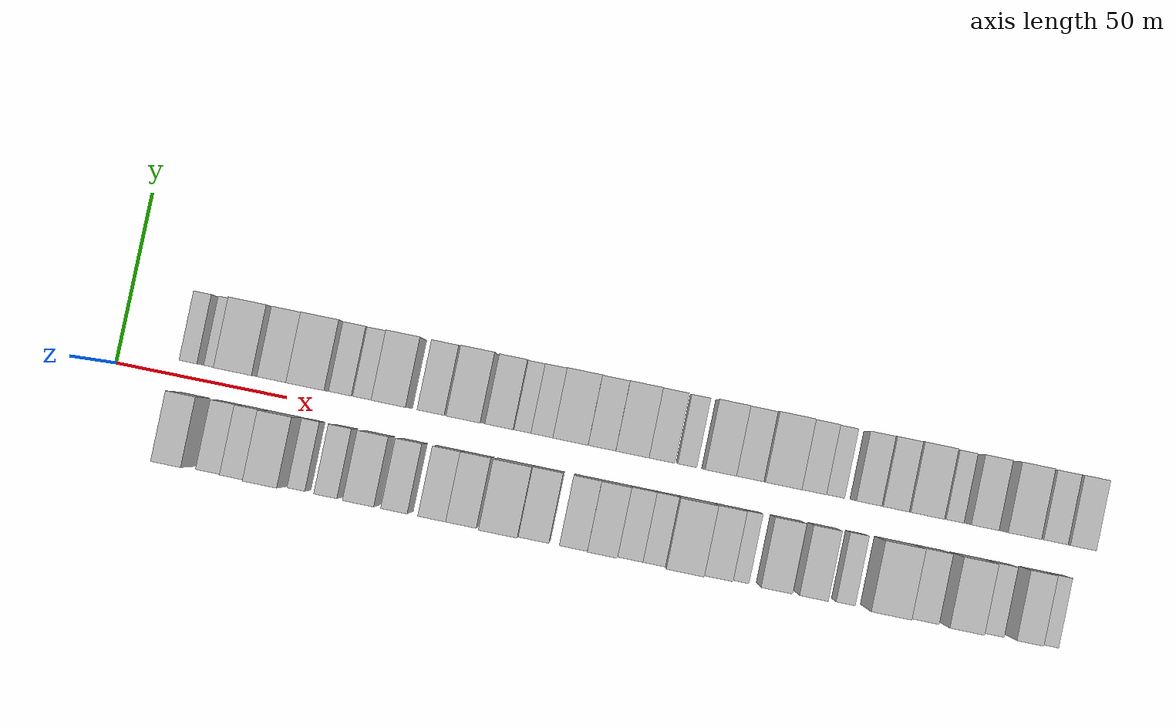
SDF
<sdf version="1.6">
 <world name="default">
  <scene>
   <sky><clouds><speed>12</speed></clouds></sky>
   <ambient>0.4 0.4 0.4 1</ambient>
   <background>0.7 0.7 0.7 1</background>
   <shadows>1</shadows>
  </scene>
  <gravity>0 0 -9.8066</gravity>
  <magnetic_field>6e-06 2.3e-05 -4.2e-05</magnetic_field>
  <physics default="0" name="default_physics" type="ode">
   <ode>
    <solver>
     <type>quick</type>
     <iters>10</iters>
     <sor>1.0</sor>
     <use_dynamic_moi_rescaling>0</use_dynamic_moi_rescaling>
    </solver>
    <constraints>
     <cfm>0</cfm>
     <erp>0.2</erp>
     <contact_max_correcting_vel>100</contact_max_correcting_vel>
     <contact_surface_layer>0.001</contact_surface_layer>
    </constraints>
   </ode>
   <max_step_size>0.004</max_step_size>
   <real_time_factor>1</real_time_factor>
   <real_time_update_rate>250</real_time_update_rate>
  </physics>
  <light name="sun" type="directional">
   <pose>0 0 10 0 0 0</pose>
   <diffuse>0.8 0.8 0.8 1</diffuse>
   <specular>0.2 0.2 0.2 1</specular>
   <attenuation>
    <range>1000</range>
    <constant>0.9</constant>
    <linear>0.01</linear>
    <quadratic>0.001</quadratic>
   </attenuation>
   <direction>-0.5 0.1 -0.9</direction>
  </light>
  <model name="building_1">
   <static>1</static>
   <pose>22.5640 14.5000 0 0.000000 0.000000 1.570796</pose>
   <link name="link">
    <pose>0 0 6.00 0 0 0</pose>
    <collision name="collision"><geometry><box><size>20.0000 5.1280 12.0000</size></box></geometry></collision>
    <visual name="visual">
     <cast_shadows>0</cast_shadows>
     <geometry><box><size>20.0000 5.1280 12.0000</size></box></geometry>
     <material>
      <script>
       <uri>model://HANNAS_wall/materials/scripts</uri>
       <uri>model://HANNAS_wall/materials/textures</uri>
       <name>vrc/HANNAS_wall</name>
      </script>
     </material>
    </visual>
   </link>
  </model>
  <model name="building_2">
   <static>1</static>
   <pose>29.7040 14.5000 0 0.000000 0.000000 1.570796</pose>
   <link name="link">
    <pose>0 0 6.00 0 0 0</pose>
    <collision name="collision"><geometry><box><size>20.0000 5.1521 12.0000</size></box></geometry></collision>
    <visual name="visual">
     <cast_shadows>0</cast_shadows>
     <geometry><box><size>20.0000 5.1521 12.0000</size></box></geometry>
     <material>
      <script>
       <uri>model://HANNAS_wall/materials/scripts</uri>
       <uri>model://HANNAS_wall/materials/textures</uri>
       <name>vrc/HANNAS_wall</name>
      </script>
     </material>
    </visual>
   </link>
  </model>
  <model name="building_3">
   <static>1</static>
   <pose>37.6547 14.5000 0 0.000000 0.000000 1.570796</pose>
   <link name="link">
    <pose>0 0 12.00 0 0 0</pose>
    <collision name="collision"><geometry><box><size>20.0000 10.7491 24.0000</size></box></geometry></collision>
    <visual name="visual">
     <cast_shadows>0</cast_shadows>
     <geometry><box><size>20.0000 10.7491 24.0000</size></box></geometry>
     <material>
      <script>
       <uri>model://HANNAS_wall/materials/scripts</uri>
       <uri>model://HANNAS_wall/materials/textures</uri>
       <name>vrc/HANNAS_wall</name>
      </script>
     </material>
    </visual>
   </link>
  </model>
  <model name="building_4">
   <static>1</static>
   <pose>48.3794 14.5000 0 0.000000 0.000000 1.570796</pose>
   <link name="link">
    <pose>0 0 10.50 0 0 0</pose>
    <collision name="collision"><geometry><box><size>20.0000 8.7003 21.0000</size></box></geometry></collision>
    <visual name="visual">
     <cast_shadows>0</cast_shadows>
     <geometry><box><size>20.0000 8.7003 21.0000</size></box></geometry>
     <material>
      <script>
       <uri>model://HANNAS_wall/materials/scripts</uri>
       <uri>model://HANNAS_wall/materials/textures</uri>
       <name>vrc/HANNAS_wall</name>
      </script>
     </material>
    </visual>
   </link>
  </model>
  <model name="building_5">
   <static>1</static>
   <pose>58.1154 14.5000 0 0.000000 0.000000 1.570796</pose>
   <link name="link">
    <pose>0 0 12.00 0 0 0</pose>
    <collision name="collision"><geometry><box><size>20.0000 10.7716 24.0000</size></box></geometry></collision>
    <visual name="visual">
     <cast_shadows>0</cast_shadows>
     <geometry><box><size>20.0000 10.7716 24.0000</size></box></geometry>
     <material>
      <script>
       <uri>model://HANNAS_wall/materials/scripts</uri>
       <uri>model://HANNAS_wall/materials/textures</uri>
       <name>vrc/HANNAS_wall</name>
      </script>
     </material>
    </visual>
   </link>
  </model>
  <model name="building_6">
   <static>1</static>
   <pose>66.7670 14.5000 0 0.000000 0.000000 1.570796</pose>
   <link name="link">
    <pose>0 0 7.50 0 0 0</pose>
    <collision name="collision"><geometry><box><size>20.0000 6.5317 15.0000</size></box></geometry></collision>
    <visual name="visual">
     <cast_shadows>0</cast_shadows>
     <geometry><box><size>20.0000 6.5317 15.0000</size></box></geometry>
     <material>
      <script>
       <uri>model://HANNAS_wall/materials/scripts</uri>
       <uri>model://HANNAS_wall/materials/textures</uri>
       <name>vrc/HANNAS_wall</name>
      </script>
     </material>
    </visual>
   </link>
  </model>
  <model name="building_7">
   <static>1</static>
   <pose>72.7308 14.5000 0 0.000000 0.000000 1.570796</pose>
   <link name="link">
    <pose>0 0 6.00 0 0 0</pose>
    <collision name="collision"><geometry><box><size>20.0000 5.3961 12.0000</size></box></geometry></collision>
    <visual name="visual">
     <cast_shadows>0</cast_shadows>
     <geometry><box><size>20.0000 5.3961 12.0000</size></box></geometry>
     <material>
      <script>
       <uri>model://HANNAS_wall/materials/scripts</uri>
       <uri>model://HANNAS_wall/materials/textures</uri>
       <name>vrc/HANNAS_wall</name>
      </script>
     </material>
    </visual>
   </link>
  </model>
  <model name="building_8">
   <static>1</static>
   <pose>81.2956 14.5000 0 0.000000 0.000000 1.570796</pose>
   <link name="link">
    <pose>0 0 10.50 0 0 0</pose>
    <collision name="collision"><geometry><box><size>20.0000 9.7335 21.0000</size></box></geometry></collision>
    <visual name="visual">
     <cast_shadows>0</cast_shadows>
     <geometry><box><size>20.0000 9.7335 21.0000</size></box></geometry>
     <material>
      <script>
       <uri>model://HANNAS_wall/materials/scripts</uri>
       <uri>model://HANNAS_wall/materials/textures</uri>
       <name>vrc/HANNAS_wall</name>
      </script>
     </material>
    </visual>
   </link>
  </model>
  <model name="building_9">
   <static>1</static>
   <pose>93.0388 14.5000 0 0.000000 0.000000 1.570796</pose>
   <link name="link">
    <pose>0 0 9.00 0 0 0</pose>
    <collision name="collision"><geometry><box><size>20.0000 7.7528 18.0000</size></box></geometry></collision>
    <visual name="visual">
     <cast_shadows>0</cast_shadows>
     <geometry><box><size>20.0000 7.7528 18.0000</size></box></geometry>
     <material>
      <script>
       <uri>model://HANNAS_wall/materials/scripts</uri>
       <uri>model://HANNAS_wall/materials/textures</uri>
       <name>vrc/HANNAS_wall</name>
      </script>
     </material>
    </visual>
   </link>
  </model>
  <model name="building_10">
   <static>1</static>
   <pose>102.7166 14.5000 0 0.000000 0.000000 1.570796</pose>
   <link name="link">
    <pose>0 0 12.00 0 0 0</pose>
    <collision name="collision"><geometry><box><size>20.0000 9.6029 24.0000</size></box></geometry></collision>
    <visual name="visual">
     <cast_shadows>0</cast_shadows>
     <geometry><box><size>20.0000 9.6029 24.0000</size></box></geometry>
     <material>
      <script>
       <uri>model://HANNAS_wall/materials/scripts</uri>
       <uri>model://HANNAS_wall/materials/textures</uri>
       <name>vrc/HANNAS_wall</name>
      </script>
     </material>
    </visual>
   </link>
  </model>
  <model name="building_11">
   <static>1</static>
   <pose>112.5334 14.5000 0 0.000000 0.000000 1.570796</pose>
   <link name="link">
    <pose>0 0 9.00 0 0 0</pose>
    <collision name="collision"><geometry><box><size>20.0000 8.0306 18.0000</size></box></geometry></collision>
    <visual name="visual">
     <cast_shadows>0</cast_shadows>
     <geometry><box><size>20.0000 8.0306 18.0000</size></box></geometry>
     <material>
      <script>
       <uri>model://HANNAS_wall/materials/scripts</uri>
       <uri>model://HANNAS_wall/materials/textures</uri>
       <name>vrc/HANNAS_wall</name>
      </script>
     </material>
    </visual>
   </link>
  </model>
  <model name="building_12">
   <static>1</static>
   <pose>119.0346 14.5000 0 0.000000 0.000000 1.570796</pose>
   <link name="link">
    <pose>0 0 6.00 0 0 0</pose>
    <collision name="collision"><geometry><box><size>20.0000 4.9718 12.0000</size></box></geometry></collision>
    <visual name="visual">
     <cast_shadows>0</cast_shadows>
     <geometry><box><size>20.0000 4.9718 12.0000</size></box></geometry>
     <material>
      <script>
       <uri>model://HANNAS_wall/materials/scripts</uri>
       <uri>model://HANNAS_wall/materials/textures</uri>
       <name>vrc/HANNAS_wall</name>
      </script>
     </material>
    </visual>
   </link>
  </model>
  <model name="building_13">
   <static>1</static>
   <pose>124.7377 14.5000 0 0.000000 0.000000 1.570796</pose>
   <link name="link">
    <pose>0 0 7.50 0 0 0</pose>
    <collision name="collision"><geometry><box><size>20.0000 6.4344 15.0000</size></box></geometry></collision>
    <visual name="visual">
     <cast_shadows>0</cast_shadows>
     <geometry><box><size>20.0000 6.4344 15.0000</size></box></geometry>
     <material>
      <script>
       <uri>model://HANNAS_wall/materials/scripts</uri>
       <uri>model://HANNAS_wall/materials/textures</uri>
       <name>vrc/HANNAS_wall</name>
      </script>
     </material>
    </visual>
   </link>
  </model>
  <model name="building_14">
   <static>1</static>
   <pose>132.9576 14.5000 0 0.000000 0.000000 1.570796</pose>
   <link name="link">
    <pose>0 0 10.50 0 0 0</pose>
    <collision name="collision"><geometry><box><size>20.0000 10.0055 21.0000</size></box></geometry></collision>
    <visual name="visual">
     <cast_shadows>0</cast_shadows>
     <geometry><box><size>20.0000 10.0055 21.0000</size></box></geometry>
     <material>
      <script>
       <uri>model://HANNAS_wall/materials/scripts</uri>
       <uri>model://HANNAS_wall/materials/textures</uri>
       <name>vrc/HANNAS_wall</name>
      </script>
     </material>
    </visual>
   </link>
  </model>
  <model name="building_15">
   <static>1</static>
   <pose>141.8944 14.5000 0 0.000000 0.000000 1.570796</pose>
   <link name="link">
    <pose>0 0 9.00 0 0 0</pose>
    <collision name="collision"><geometry><box><size>20.0000 7.8681 18.0000</size></box></geometry></collision>
    <visual name="visual">
     <cast_shadows>0</cast_shadows>
     <geometry><box><size>20.0000 7.8681 18.0000</size></box></geometry>
     <material>
      <script>
       <uri>model://HANNAS_wall/materials/scripts</uri>
       <uri>model://HANNAS_wall/materials/textures</uri>
       <name>vrc/HANNAS_wall</name>
      </script>
     </material>
    </visual>
   </link>
  </model>
  <model name="building_16">
   <static>1</static>
   <pose>150.5340 14.5000 0 0.000000 0.000000 1.570796</pose>
   <link name="link">
    <pose>0 0 10.50 0 0 0</pose>
    <collision name="collision"><geometry><box><size>20.0000 9.4110 21.0000</size></box></geometry></collision>
    <visual name="visual">
     <cast_shadows>0</cast_shadows>
     <geometry><box><size>20.0000 9.4110 21.0000</size></box></geometry>
     <material>
      <script>
       <uri>model://HANNAS_wall/materials/scripts</uri>
       <uri>model://HANNAS_wall/materials/textures</uri>
       <name>vrc/HANNAS_wall</name>
      </script>
     </material>
    </visual>
   </link>
  </model>
  <model name="building_17">
   <static>1</static>
   <pose>158.9657 14.5000 0 0.000000 0.000000 1.570796</pose>
   <link name="link">
    <pose>0 0 9.00 0 0 0</pose>
    <collision name="collision"><geometry><box><size>20.0000 7.4523 18.0000</size></box></geometry></collision>
    <visual name="visual">
     <cast_shadows>0</cast_shadows>
     <geometry><box><size>20.0000 7.4523 18.0000</size></box></geometry>
     <material>
      <script>
       <uri>model://HANNAS_wall/materials/scripts</uri>
       <uri>model://HANNAS_wall/materials/textures</uri>
       <name>vrc/HANNAS_wall</name>
      </script>
     </material>
    </visual>
   </link>
  </model>
  <model name="building_18">
   <static>1</static>
   <pose>166.4267 14.5000 0 0.000000 0.000000 1.570796</pose>
   <link name="link">
    <pose>0 0 6.00 0 0 0</pose>
    <collision name="collision"><geometry><box><size>20.0000 5.4697 12.0000</size></box></geometry></collision>
    <visual name="visual">
     <cast_shadows>0</cast_shadows>
     <geometry><box><size>20.0000 5.4697 12.0000</size></box></geometry>
     <material>
      <script>
       <uri>model://HANNAS_wall/materials/scripts</uri>
       <uri>model://HANNAS_wall/materials/textures</uri>
       <name>vrc/HANNAS_wall</name>
      </script>
     </material>
    </visual>
   </link>
  </model>
  <model name="building_19">
   <static>1</static>
   <pose>175.5995 14.5000 0 0.000000 0.000000 1.570796</pose>
   <link name="link">
    <pose>0 0 10.50 0 0 0</pose>
    <collision name="collision"><geometry><box><size>20.0000 8.8758 21.0000</size></box></geometry></collision>
    <visual name="visual">
     <cast_shadows>0</cast_shadows>
     <geometry><box><size>20.0000 8.8758 21.0000</size></box></geometry>
     <material>
      <script>
       <uri>model://HANNAS_wall/materials/scripts</uri>
       <uri>model://HANNAS_wall/materials/textures</uri>
       <name>vrc/HANNAS_wall</name>
      </script>
     </material>
    </visual>
   </link>
  </model>
  <model name="building_20">
   <static>1</static>
   <pose>184.0230 14.5000 0 0.000000 0.000000 1.570796</pose>
   <link name="link">
    <pose>0 0 9.00 0 0 0</pose>
    <collision name="collision"><geometry><box><size>20.0000 7.9713 18.0000</size></box></geometry></collision>
    <visual name="visual">
     <cast_shadows>0</cast_shadows>
     <geometry><box><size>20.0000 7.9713 18.0000</size></box></geometry>
     <material>
      <script>
       <uri>model://HANNAS_wall/materials/scripts</uri>
       <uri>model://HANNAS_wall/materials/textures</uri>
       <name>vrc/HANNAS_wall</name>
      </script>
     </material>
    </visual>
   </link>
  </model>
  <model name="building_21">
   <static>1</static>
   <pose>193.1325 14.5000 0 0.000000 0.000000 1.570796</pose>
   <link name="link">
    <pose>0 0 12.00 0 0 0</pose>
    <collision name="collision"><geometry><box><size>20.0000 10.2476 24.0000</size></box></geometry></collision>
    <visual name="visual">
     <cast_shadows>0</cast_shadows>
     <geometry><box><size>20.0000 10.2476 24.0000</size></box></geometry>
     <material>
      <script>
       <uri>model://HANNAS_wall/materials/scripts</uri>
       <uri>model://HANNAS_wall/materials/textures</uri>
       <name>vrc/HANNAS_wall</name>
      </script>
     </material>
    </visual>
   </link>
  </model>
  <model name="building_22">
   <static>1</static>
   <pose>202.0533 14.5000 0 0.000000 0.000000 1.570796</pose>
   <link name="link">
    <pose>0 0 9.00 0 0 0</pose>
    <collision name="collision"><geometry><box><size>20.0000 7.5940 18.0000</size></box></geometry></collision>
    <visual name="visual">
     <cast_shadows>0</cast_shadows>
     <geometry><box><size>20.0000 7.5940 18.0000</size></box></geometry>
     <material>
      <script>
       <uri>model://HANNAS_wall/materials/scripts</uri>
       <uri>model://HANNAS_wall/materials/textures</uri>
       <name>vrc/HANNAS_wall</name>
      </script>
     </material>
    </visual>
   </link>
  </model>
  <model name="building_23">
   <static>1</static>
   <pose>208.7998 14.5000 0 0.000000 0.000000 1.570796</pose>
   <link name="link">
    <pose>0 0 6.00 0 0 0</pose>
    <collision name="collision"><geometry><box><size>20.0000 5.8991 12.0000</size></box></geometry></collision>
    <visual name="visual">
     <cast_shadows>0</cast_shadows>
     <geometry><box><size>20.0000 5.8991 12.0000</size></box></geometry>
     <material>
      <script>
       <uri>model://HANNAS_wall/materials/scripts</uri>
       <uri>model://HANNAS_wall/materials/textures</uri>
       <name>vrc/HANNAS_wall</name>
      </script>
     </material>
    </visual>
   </link>
  </model>
  <model name="building_24">
   <static>1</static>
   <pose>218.3971 14.5000 0 0.000000 0.000000 1.570796</pose>
   <link name="link">
    <pose>0 0 7.50 0 0 0</pose>
    <collision name="collision"><geometry><box><size>20.0000 7.2955 15.0000</size></box></geometry></collision>
    <visual name="visual">
     <cast_shadows>0</cast_shadows>
     <geometry><box><size>20.0000 7.2955 15.0000</size></box></geometry>
     <material>
      <script>
       <uri>model://HANNAS_wall/materials/scripts</uri>
       <uri>model://HANNAS_wall/materials/textures</uri>
       <name>vrc/HANNAS_wall</name>
      </script>
     </material>
    </visual>
   </link>
  </model>
  <model name="building_25">
   <static>1</static>
   <pose>225.7242 14.5000 0 0.000000 0.000000 1.570796</pose>
   <link name="link">
    <pose>0 0 9.00 0 0 0</pose>
    <collision name="collision"><geometry><box><size>20.0000 7.3586 18.0000</size></box></geometry></collision>
    <visual name="visual">
     <cast_shadows>0</cast_shadows>
     <geometry><box><size>20.0000 7.3586 18.0000</size></box></geometry>
     <material>
      <script>
       <uri>model://HANNAS_wall/materials/scripts</uri>
       <uri>model://HANNAS_wall/materials/textures</uri>
       <name>vrc/HANNAS_wall</name>
      </script>
     </material>
    </visual>
   </link>
  </model>
  <model name="building_26">
   <static>1</static>
   <pose>234.1721 14.5000 0 0.000000 0.000000 1.570796</pose>
   <link name="link">
    <pose>0 0 10.50 0 0 0</pose>
    <collision name="collision"><geometry><box><size>20.0000 9.5372 21.0000</size></box></geometry></collision>
    <visual name="visual">
     <cast_shadows>0</cast_shadows>
     <geometry><box><size>20.0000 9.5372 21.0000</size></box></geometry>
     <material>
      <script>
       <uri>model://HANNAS_wall/materials/scripts</uri>
       <uri>model://HANNAS_wall/materials/textures</uri>
       <name>vrc/HANNAS_wall</name>
      </script>
     </material>
    </visual>
   </link>
  </model>
  <model name="building_27">
   <static>1</static>
   <pose>243.5140 14.5000 0 0.000000 0.000000 1.570796</pose>
   <link name="link">
    <pose>0 0 6.00 0 0 0</pose>
    <collision name="collision"><geometry><box><size>20.0000 5.1466 12.0000</size></box></geometry></collision>
    <visual name="visual">
     <cast_shadows>0</cast_shadows>
     <geometry><box><size>20.0000 5.1466 12.0000</size></box></geometry>
     <material>
      <script>
       <uri>model://HANNAS_wall/materials/scripts</uri>
       <uri>model://HANNAS_wall/materials/textures</uri>
       <name>vrc/HANNAS_wall</name>
      </script>
     </material>
    </visual>
   </link>
  </model>
  <model name="building_28">
   <static>1</static>
   <pose>251.0256 14.5000 0 0.000000 0.000000 1.570796</pose>
   <link name="link">
    <pose>0 0 9.00 0 0 0</pose>
    <collision name="collision"><geometry><box><size>20.0000 7.8765 18.0000</size></box></geometry></collision>
    <visual name="visual">
     <cast_shadows>0</cast_shadows>
     <geometry><box><size>20.0000 7.8765 18.0000</size></box></geometry>
     <material>
      <script>
       <uri>model://HANNAS_wall/materials/scripts</uri>
       <uri>model://HANNAS_wall/materials/textures</uri>
       <name>vrc/HANNAS_wall</name>
      </script>
     </material>
    </visual>
   </link>
  </model>
  <model name="building_29">
   <static>1</static>
   <pose>261.6673 14.5000 0 0.000000 0.000000 1.570796</pose>
   <link name="link">
    <pose>0 0 10.50 0 0 0</pose>
    <collision name="collision"><geometry><box><size>20.0000 9.4068 21.0000</size></box></geometry></collision>
    <visual name="visual">
     <cast_shadows>0</cast_shadows>
     <geometry><box><size>20.0000 9.4068 21.0000</size></box></geometry>
     <material>
      <script>
       <uri>model://HANNAS_wall/materials/scripts</uri>
       <uri>model://HANNAS_wall/materials/textures</uri>
       <name>vrc/HANNAS_wall</name>
      </script>
     </material>
    </visual>
   </link>
  </model>
  <model name="building_30">
   <static>1</static>
   <pose>271.8445 14.5000 0 0.000000 0.000000 1.570796</pose>
   <link name="link">
    <pose>0 0 7.50 0 0 0</pose>
    <collision name="collision"><geometry><box><size>20.0000 6.9476 15.0000</size></box></geometry></collision>
    <visual name="visual">
     <cast_shadows>0</cast_shadows>
     <geometry><box><size>20.0000 6.9476 15.0000</size></box></geometry>
     <material>
      <script>
       <uri>model://HANNAS_wall/materials/scripts</uri>
       <uri>model://HANNAS_wall/materials/textures</uri>
       <name>vrc/HANNAS_wall</name>
      </script>
     </material>
    </visual>
   </link>
  </model>
  <model name="building_31">
   <static>1</static>
   <pose>279.0057 14.5000 0 0.000000 0.000000 1.570796</pose>
   <link name="link">
    <pose>0 0 9.00 0 0 0</pose>
    <collision name="collision"><geometry><box><size>20.0000 7.3749 18.0000</size></box></geometry></collision>
    <visual name="visual">
     <cast_shadows>0</cast_shadows>
     <geometry><box><size>20.0000 7.3749 18.0000</size></box></geometry>
     <material>
      <script>
       <uri>model://HANNAS_wall/materials/scripts</uri>
       <uri>model://HANNAS_wall/materials/textures</uri>
       <name>vrc/HANNAS_wall</name>
      </script>
     </material>
    </visual>
   </link>
  </model>
  <model name="building_32">
   <static>1</static>
   <pose>24.2568 -14.5000 0 0.000000 0.000000 1.570796</pose>
   <link name="link">
    <pose>0 0 10.50 0 0 0</pose>
    <collision name="collision"><geometry><box><size>20.0000 8.5136 21.0000</size></box></geometry></collision>
    <visual name="visual">
     <cast_shadows>0</cast_shadows>
     <geometry><box><size>20.0000 8.5136 21.0000</size></box></geometry>
     <material>
      <script>
       <uri>model://HANNAS_wall/materials/scripts</uri>
       <uri>model://HANNAS_wall/materials/textures</uri>
       <name>vrc/HANNAS_wall</name>
      </script>
     </material>
    </visual>
   </link>
  </model>
  <model name="building_33">
   <static>1</static>
   <pose>35.2274 -14.5000 0 0.000000 0.000000 1.570796</pose>
   <link name="link">
    <pose>0 0 7.50 0 0 0</pose>
    <collision name="collision"><geometry><box><size>20.0000 7.4274 15.0000</size></box></geometry></collision>
    <visual name="visual">
     <cast_shadows>0</cast_shadows>
     <geometry><box><size>20.0000 7.4274 15.0000</size></box></geometry>
     <material>
      <script>
       <uri>model://HANNAS_wall/materials/scripts</uri>
       <uri>model://HANNAS_wall/materials/textures</uri>
       <name>vrc/HANNAS_wall</name>
      </script>
     </material>
    </visual>
   </link>
  </model>
  <model name="building_34">
   <static>1</static>
   <pose>42.7527 -14.5000 0 0.000000 0.000000 1.570796</pose>
   <link name="link">
    <pose>0 0 9.00 0 0 0</pose>
    <collision name="collision"><geometry><box><size>20.0000 7.6233 18.0000</size></box></geometry></collision>
    <visual name="visual">
     <cast_shadows>0</cast_shadows>
     <geometry><box><size>20.0000 7.6233 18.0000</size></box></geometry>
     <material>
      <script>
       <uri>model://HANNAS_wall/materials/scripts</uri>
       <uri>model://HANNAS_wall/materials/textures</uri>
       <name>vrc/HANNAS_wall</name>
      </script>
     </material>
    </visual>
   </link>
  </model>
  <model name="building_35">
   <static>1</static>
   <pose>51.4000 -14.5000 0 0.000000 0.000000 1.570796</pose>
   <link name="link">
    <pose>0 0 12.00 0 0 0</pose>
    <collision name="collision"><geometry><box><size>20.0000 9.6712 24.0000</size></box></geometry></collision>
    <visual name="visual">
     <cast_shadows>0</cast_shadows>
     <geometry><box><size>20.0000 9.6712 24.0000</size></box></geometry>
     <material>
      <script>
       <uri>model://HANNAS_wall/materials/scripts</uri>
       <uri>model://HANNAS_wall/materials/textures</uri>
       <name>vrc/HANNAS_wall</name>
      </script>
     </material>
    </visual>
   </link>
  </model>
  <model name="building_36">
   <static>1</static>
   <pose>59.7895 -14.5000 0 0.000000 0.000000 1.570796</pose>
   <link name="link">
    <pose>0 0 6.00 0 0 0</pose>
    <collision name="collision"><geometry><box><size>20.0000 5.1079 12.0000</size></box></geometry></collision>
    <visual name="visual">
     <cast_shadows>0</cast_shadows>
     <geometry><box><size>20.0000 5.1079 12.0000</size></box></geometry>
     <material>
      <script>
       <uri>model://HANNAS_wall/materials/scripts</uri>
       <uri>model://HANNAS_wall/materials/textures</uri>
       <name>vrc/HANNAS_wall</name>
      </script>
     </material>
    </visual>
   </link>
  </model>
  <model name="building_37">
   <static>1</static>
   <pose>68.6634 -14.5000 0 0.000000 0.000000 1.570796</pose>
   <link name="link">
    <pose>0 0 7.50 0 0 0</pose>
    <collision name="collision"><geometry><box><size>20.0000 6.6399 15.0000</size></box></geometry></collision>
    <visual name="visual">
     <cast_shadows>0</cast_shadows>
     <geometry><box><size>20.0000 6.6399 15.0000</size></box></geometry>
     <material>
      <script>
       <uri>model://HANNAS_wall/materials/scripts</uri>
       <uri>model://HANNAS_wall/materials/textures</uri>
       <name>vrc/HANNAS_wall</name>
      </script>
     </material>
    </visual>
   </link>
  </model>
  <model name="building_38">
   <static>1</static>
   <pose>78.4284 -14.5000 0 0.000000 0.000000 1.570796</pose>
   <link name="link">
    <pose>0 0 9.00 0 0 0</pose>
    <collision name="collision"><geometry><box><size>20.0000 8.8901 18.0000</size></box></geometry></collision>
    <visual name="visual">
     <cast_shadows>0</cast_shadows>
     <geometry><box><size>20.0000 8.8901 18.0000</size></box></geometry>
     <material>
      <script>
       <uri>model://HANNAS_wall/materials/scripts</uri>
       <uri>model://HANNAS_wall/materials/textures</uri>
       <name>vrc/HANNAS_wall</name>
      </script>
     </material>
    </visual>
   </link>
  </model>
  <model name="building_39">
   <static>1</static>
   <pose>88.6542 -14.5000 0 0.000000 0.000000 1.570796</pose>
   <link name="link">
    <pose>0 0 9.00 0 0 0</pose>
    <collision name="collision"><geometry><box><size>20.0000 7.5615 18.0000</size></box></geometry></collision>
    <visual name="visual">
     <cast_shadows>0</cast_shadows>
     <geometry><box><size>20.0000 7.5615 18.0000</size></box></geometry>
     <material>
      <script>
       <uri>model://HANNAS_wall/materials/scripts</uri>
       <uri>model://HANNAS_wall/materials/textures</uri>
       <name>vrc/HANNAS_wall</name>
      </script>
     </material>
    </visual>
   </link>
  </model>
  <model name="building_40">
   <static>1</static>
   <pose>99.4046 -14.5000 0 0.000000 0.000000 1.570796</pose>
   <link name="link">
    <pose>0 0 9.00 0 0 0</pose>
    <collision name="collision"><geometry><box><size>20.0000 7.9393 18.0000</size></box></geometry></collision>
    <visual name="visual">
     <cast_shadows>0</cast_shadows>
     <geometry><box><size>20.0000 7.9393 18.0000</size></box></geometry>
     <material>
      <script>
       <uri>model://HANNAS_wall/materials/scripts</uri>
       <uri>model://HANNAS_wall/materials/textures</uri>
       <name>vrc/HANNAS_wall</name>
      </script>
     </material>
    </visual>
   </link>
  </model>
  <model name="building_41">
   <static>1</static>
   <pose>107.7395 -14.5000 0 0.000000 0.000000 1.570796</pose>
   <link name="link">
    <pose>0 0 9.00 0 0 0</pose>
    <collision name="collision"><geometry><box><size>20.0000 8.7307 18.0000</size></box></geometry></collision>
    <visual name="visual">
     <cast_shadows>0</cast_shadows>
     <geometry><box><size>20.0000 8.7307 18.0000</size></box></geometry>
     <material>
      <script>
       <uri>model://HANNAS_wall/materials/scripts</uri>
       <uri>model://HANNAS_wall/materials/textures</uri>
       <name>vrc/HANNAS_wall</name>
      </script>
     </material>
    </visual>
   </link>
  </model>
  <model name="building_42">
   <static>1</static>
   <pose>118.5703 -14.5000 0 0.000000 0.000000 1.570796</pose>
   <link name="link">
    <pose>0 0 12.00 0 0 0</pose>
    <collision name="collision"><geometry><box><size>20.0000 10.9309 24.0000</size></box></geometry></collision>
    <visual name="visual">
     <cast_shadows>0</cast_shadows>
     <geometry><box><size>20.0000 10.9309 24.0000</size></box></geometry>
     <material>
      <script>
       <uri>model://HANNAS_wall/materials/scripts</uri>
       <uri>model://HANNAS_wall/materials/textures</uri>
       <name>vrc/HANNAS_wall</name>
      </script>
     </material>
    </visual>
   </link>
  </model>
  <model name="building_43">
   <static>1</static>
   <pose>128.4102 -14.5000 0 0.000000 0.000000 1.570796</pose>
   <link name="link">
    <pose>0 0 9.00 0 0 0</pose>
    <collision name="collision"><geometry><box><size>20.0000 8.7490 18.0000</size></box></geometry></collision>
    <visual name="visual">
     <cast_shadows>0</cast_shadows>
     <geometry><box><size>20.0000 8.7490 18.0000</size></box></geometry>
     <material>
      <script>
       <uri>model://HANNAS_wall/materials/scripts</uri>
       <uri>model://HANNAS_wall/materials/textures</uri>
       <name>vrc/HANNAS_wall</name>
      </script>
     </material>
    </visual>
   </link>
  </model>
  <model name="building_44">
   <static>1</static>
   <pose>139.7721 -14.5000 0 0.000000 0.000000 1.570796</pose>
   <link name="link">
    <pose>0 0 9.00 0 0 0</pose>
    <collision name="collision"><geometry><box><size>20.0000 7.9748 18.0000</size></box></geometry></collision>
    <visual name="visual">
     <cast_shadows>0</cast_shadows>
     <geometry><box><size>20.0000 7.9748 18.0000</size></box></geometry>
     <material>
      <script>
       <uri>model://HANNAS_wall/materials/scripts</uri>
       <uri>model://HANNAS_wall/materials/textures</uri>
       <name>vrc/HANNAS_wall</name>
      </script>
     </material>
    </visual>
   </link>
  </model>
  <model name="building_45">
   <static>1</static>
   <pose>148.0269 -14.5000 0 0.000000 0.000000 1.570796</pose>
   <link name="link">
    <pose>0 0 10.50 0 0 0</pose>
    <collision name="collision"><geometry><box><size>20.0000 8.5347 21.0000</size></box></geometry></collision>
    <visual name="visual">
     <cast_shadows>0</cast_shadows>
     <geometry><box><size>20.0000 8.5347 21.0000</size></box></geometry>
     <material>
      <script>
       <uri>model://HANNAS_wall/materials/scripts</uri>
       <uri>model://HANNAS_wall/materials/textures</uri>
       <name>vrc/HANNAS_wall</name>
      </script>
     </material>
    </visual>
   </link>
  </model>
  <model name="building_46">
   <static>1</static>
   <pose>155.9692 -14.5000 0 0.000000 0.000000 1.570796</pose>
   <link name="link">
    <pose>0 0 7.50 0 0 0</pose>
    <collision name="collision"><geometry><box><size>20.0000 7.3498 15.0000</size></box></geometry></collision>
    <visual name="visual">
     <cast_shadows>0</cast_shadows>
     <geometry><box><size>20.0000 7.3498 15.0000</size></box></geometry>
     <material>
      <script>
       <uri>model://HANNAS_wall/materials/scripts</uri>
       <uri>model://HANNAS_wall/materials/textures</uri>
       <name>vrc/HANNAS_wall</name>
      </script>
     </material>
    </visual>
   </link>
  </model>
  <model name="building_47">
   <static>1</static>
   <pose>162.8568 -14.5000 0 0.000000 0.000000 1.570796</pose>
   <link name="link">
    <pose>0 0 7.50 0 0 0</pose>
    <collision name="collision"><geometry><box><size>20.0000 6.4254 15.0000</size></box></geometry></collision>
    <visual name="visual">
     <cast_shadows>0</cast_shadows>
     <geometry><box><size>20.0000 6.4254 15.0000</size></box></geometry>
     <material>
      <script>
       <uri>model://HANNAS_wall/materials/scripts</uri>
       <uri>model://HANNAS_wall/materials/textures</uri>
       <name>vrc/HANNAS_wall</name>
      </script>
     </material>
    </visual>
   </link>
  </model>
  <model name="building_48">
   <static>1</static>
   <pose>171.4104 -14.5000 0 0.000000 0.000000 1.570796</pose>
   <link name="link">
    <pose>0 0 12.00 0 0 0</pose>
    <collision name="collision"><geometry><box><size>20.0000 10.6818 24.0000</size></box></geometry></collision>
    <visual name="visual">
     <cast_shadows>0</cast_shadows>
     <geometry><box><size>20.0000 10.6818 24.0000</size></box></geometry>
     <material>
      <script>
       <uri>model://HANNAS_wall/materials/scripts</uri>
       <uri>model://HANNAS_wall/materials/textures</uri>
       <name>vrc/HANNAS_wall</name>
      </script>
     </material>
    </visual>
   </link>
  </model>
  <model name="building_49">
   <static>1</static>
   <pose>180.9956 -14.5000 0 0.000000 0.000000 1.570796</pose>
   <link name="link">
    <pose>0 0 9.00 0 0 0</pose>
    <collision name="collision"><geometry><box><size>20.0000 8.4886 18.0000</size></box></geometry></collision>
    <visual name="visual">
     <cast_shadows>0</cast_shadows>
     <geometry><box><size>20.0000 8.4886 18.0000</size></box></geometry>
     <material>
      <script>
       <uri>model://HANNAS_wall/materials/scripts</uri>
       <uri>model://HANNAS_wall/materials/textures</uri>
       <name>vrc/HANNAS_wall</name>
      </script>
     </material>
    </visual>
   </link>
  </model>
  <model name="building_50">
   <static>1</static>
   <pose>187.7154 -14.5000 0 0.000000 0.000000 1.570796</pose>
   <link name="link">
    <pose>0 0 6.00 0 0 0</pose>
    <collision name="collision"><geometry><box><size>20.0000 4.9509 12.0000</size></box></geometry></collision>
    <visual name="visual">
     <cast_shadows>0</cast_shadows>
     <geometry><box><size>20.0000 4.9509 12.0000</size></box></geometry>
     <material>
      <script>
       <uri>model://HANNAS_wall/materials/scripts</uri>
       <uri>model://HANNAS_wall/materials/textures</uri>
       <name>vrc/HANNAS_wall</name>
      </script>
     </material>
    </visual>
   </link>
  </model>
  <model name="building_51">
   <static>1</static>
   <pose>197.6737 -14.5000 0 0.000000 0.000000 1.570796</pose>
   <link name="link">
    <pose>0 0 9.00 0 0 0</pose>
    <collision name="collision"><geometry><box><size>20.0000 8.9659 18.0000</size></box></geometry></collision>
    <visual name="visual">
     <cast_shadows>0</cast_shadows>
     <geometry><box><size>20.0000 8.9659 18.0000</size></box></geometry>
     <material>
      <script>
       <uri>model://HANNAS_wall/materials/scripts</uri>
       <uri>model://HANNAS_wall/materials/textures</uri>
       <name>vrc/HANNAS_wall</name>
      </script>
     </material>
    </visual>
   </link>
  </model>
  <model name="building_52">
   <static>1</static>
   <pose>208.2187 -14.5000 0 0.000000 0.000000 1.570796</pose>
   <link name="link">
    <pose>0 0 9.00 0 0 0</pose>
    <collision name="collision"><geometry><box><size>20.0000 8.1241 18.0000</size></box></geometry></collision>
    <visual name="visual">
     <cast_shadows>0</cast_shadows>
     <geometry><box><size>20.0000 8.1241 18.0000</size></box></geometry>
     <material>
      <script>
       <uri>model://HANNAS_wall/materials/scripts</uri>
       <uri>model://HANNAS_wall/materials/textures</uri>
       <name>vrc/HANNAS_wall</name>
      </script>
     </material>
    </visual>
   </link>
  </model>
  <model name="building_53">
   <static>1</static>
   <pose>218.0170 -14.5000 0 0.000000 0.000000 1.570796</pose>
   <link name="link">
    <pose>0 0 6.00 0 0 0</pose>
    <collision name="collision"><geometry><box><size>20.0000 5.4724 12.0000</size></box></geometry></collision>
    <visual name="visual">
     <cast_shadows>0</cast_shadows>
     <geometry><box><size>20.0000 5.4724 12.0000</size></box></geometry>
     <material>
      <script>
       <uri>model://HANNAS_wall/materials/scripts</uri>
       <uri>model://HANNAS_wall/materials/textures</uri>
       <name>vrc/HANNAS_wall</name>
      </script>
     </material>
    </visual>
   </link>
  </model>
  <model name="building_54">
   <static>1</static>
   <pose>229.4592 -14.5000 0 0.000000 0.000000 1.570796</pose>
   <link name="link">
    <pose>0 0 12.00 0 0 0</pose>
    <collision name="collision"><geometry><box><size>20.0000 11.4120 24.0000</size></box></geometry></collision>
    <visual name="visual">
     <cast_shadows>0</cast_shadows>
     <geometry><box><size>20.0000 11.4120 24.0000</size></box></geometry>
     <material>
      <script>
       <uri>model://HANNAS_wall/materials/scripts</uri>
       <uri>model://HANNAS_wall/materials/textures</uri>
       <name>vrc/HANNAS_wall</name>
      </script>
     </material>
    </visual>
   </link>
  </model>
  <model name="building_55">
   <static>1</static>
   <pose>239.5193 -14.5000 0 0.000000 0.000000 1.570796</pose>
   <link name="link">
    <pose>0 0 9.00 0 0 0</pose>
    <collision name="collision"><geometry><box><size>20.0000 8.7083 18.0000</size></box></geometry></collision>
    <visual name="visual">
     <cast_shadows>0</cast_shadows>
     <geometry><box><size>20.0000 8.7083 18.0000</size></box></geometry>
     <material>
      <script>
       <uri>model://HANNAS_wall/materials/scripts</uri>
       <uri>model://HANNAS_wall/materials/textures</uri>
       <name>vrc/HANNAS_wall</name>
      </script>
     </material>
    </visual>
   </link>
  </model>
  <model name="building_56">
   <static>1</static>
   <pose>250.7693 -14.5000 0 0.000000 0.000000 1.570796</pose>
   <link name="link">
    <pose>0 0 12.00 0 0 0</pose>
    <collision name="collision"><geometry><box><size>20.0000 9.7916 24.0000</size></box></geometry></collision>
    <visual name="visual">
     <cast_shadows>0</cast_shadows>
     <geometry><box><size>20.0000 9.7916 24.0000</size></box></geometry>
     <material>
      <script>
       <uri>model://HANNAS_wall/materials/scripts</uri>
       <uri>model://HANNAS_wall/materials/textures</uri>
       <name>vrc/HANNAS_wall</name>
      </script>
     </material>
    </visual>
   </link>
  </model>
  <model name="building_57">
   <static>1</static>
   <pose>259.3172 -14.5000 0 0.000000 0.000000 1.570796</pose>
   <link name="link">
    <pose>0 0 7.50 0 0 0</pose>
    <collision name="collision"><geometry><box><size>20.0000 7.3041 15.0000</size></box></geometry></collision>
    <visual name="visual">
     <cast_shadows>0</cast_shadows>
     <geometry><box><size>20.0000 7.3041 15.0000</size></box></geometry>
     <material>
      <script>
       <uri>model://HANNAS_wall/materials/scripts</uri>
       <uri>model://HANNAS_wall/materials/textures</uri>
       <name>vrc/HANNAS_wall</name>
      </script>
     </material>
    </visual>
   </link>
  </model>
  <model name="building_58">
   <static>1</static>
   <pose>269.8132 -14.5000 0 0.000000 0.000000 1.570796</pose>
   <link name="link">
    <pose>0 0 9.00 0 0 0</pose>
    <collision name="collision"><geometry><box><size>20.0000 7.6880 18.0000</size></box></geometry></collision>
    <visual name="visual">
     <cast_shadows>0</cast_shadows>
     <geometry><box><size>20.0000 7.6880 18.0000</size></box></geometry>
     <material>
      <script>
       <uri>model://HANNAS_wall/materials/scripts</uri>
       <uri>model://HANNAS_wall/materials/textures</uri>
       <name>vrc/HANNAS_wall</name>
      </script>
     </material>
    </visual>
   </link>
  </model>
  <model name="building_59">
   <static>1</static>
   <pose>276.4407 -14.5000 0 0.000000 0.000000 1.570796</pose>
   <link name="link">
    <pose>0 0 6.00 0 0 0</pose>
    <collision name="collision"><geometry><box><size>20.0000 5.5668 12.0000</size></box></geometry></collision>
    <visual name="visual">
     <cast_shadows>0</cast_shadows>
     <geometry><box><size>20.0000 5.5668 12.0000</size></box></geometry>
     <material>
      <script>
       <uri>model://HANNAS_wall/materials/scripts</uri>
       <uri>model://HANNAS_wall/materials/textures</uri>
       <name>vrc/HANNAS_wall</name>
      </script>
     </material>
    </visual>
   </link>
  </model>
 </world>
</sdf>
